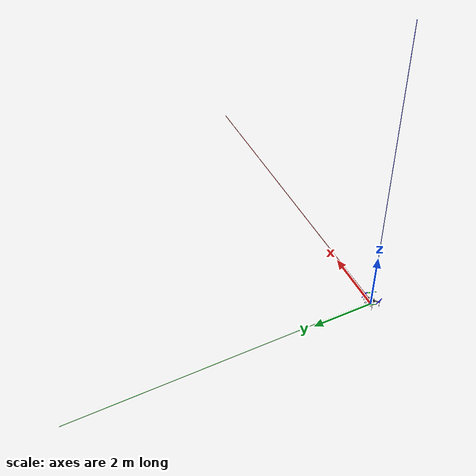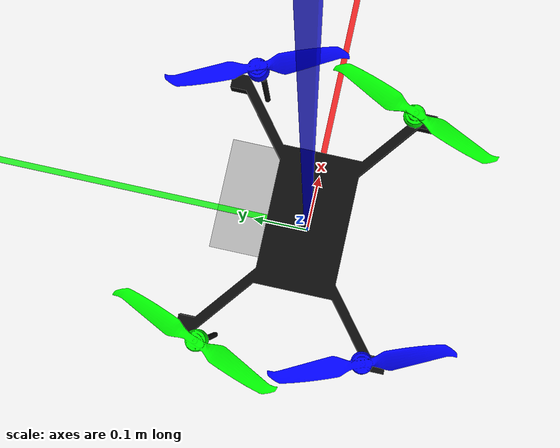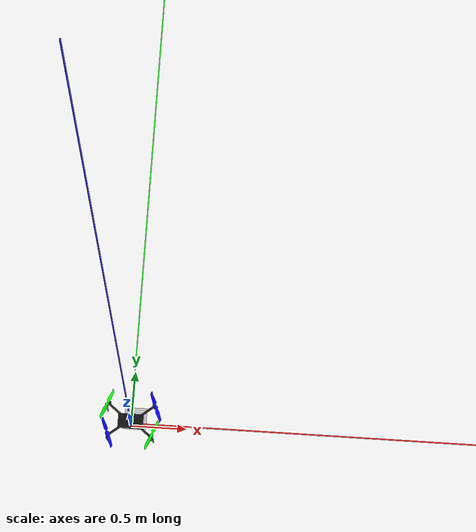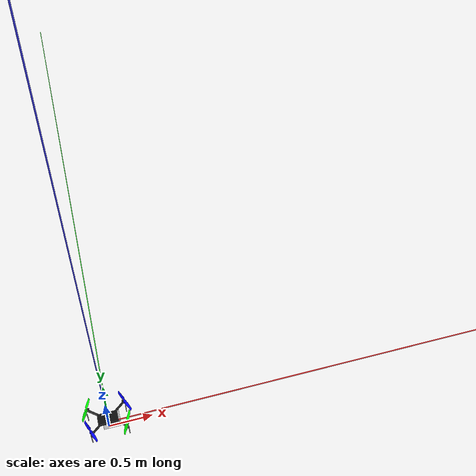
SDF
<sdf version="1.9">
 <world name="custom_runway">
  <physics name="1ms" type="ignore">
   <max_step_size>0.001</max_step_size>
   <real_time_factor>1.0</real_time_factor>
  </physics>
  <plugin filename="gz-sim-physics-system" name="gz::sim::systems::Physics"/>
  <plugin filename="gz-sim-sensors-system" name="gz::sim::systems::Sensors">
   <render_engine>ogre2</render_engine>
  </plugin>
  <plugin filename="gz-sim-user-commands-system" name="gz::sim::systems::UserCommands"/>
  <plugin filename="gz-sim-scene-broadcaster-system" name="gz::sim::systems::SceneBroadcaster"/>
  <plugin filename="gz-sim-imu-system" name="gz::sim::systems::Imu"/>
  <plugin filename="gz-sim-navsat-system" name="gz::sim::systems::NavSat"/>
  <scene><ambient>1.0 1.0 1.0</ambient><background>0.8 0.8 0.8</background></scene>
  <spherical_coordinates>
   <latitude_deg>-35.363262</latitude_deg>
   <longitude_deg>149.165237</longitude_deg>
   <elevation>584</elevation>
   <heading_deg>0</heading_deg>
   <surface_model>EARTH_WGS84</surface_model>
  </spherical_coordinates>
  <light type="directional" name="sun">
   <pose>0 0 10 0 0 0</pose>
   <diffuse>0.8 0.8 0.8 1</diffuse>
   <specular>0.8 0.8 0.8 1</specular>
   <attenuation>
    <range>1000</range>
    <constant>0.9</constant>
    <linear>0.01</linear>
    <quadratic>0.001</quadratic>
   </attenuation>
   <direction>-0.5 0.1 -0.9</direction>
  </light>
  <model name="axes">
   <static>1</static>
   <link name="link">
    <visual name="r">
     <cast_shadows>0</cast_shadows>
     <pose>5 0 0.1 0 0 0</pose>
     <geometry><box><size>10 0.01 0.01</size></box></geometry>
     <material>
      <ambient>1 0 0 0.8</ambient>
      <diffuse>1 0 0 0.8</diffuse>
      <emissive>1 0 0 0.8</emissive>
      <specular>0.5 0.5 0.5 0.8</specular>
     </material>
    </visual>
    <visual name="g">
     <cast_shadows>0</cast_shadows>
     <pose>0 5 0.1 0 0 0</pose>
     <geometry><box><size>0.01 10 0.01</size></box></geometry>
     <material>
      <ambient>0 1 0 0.8</ambient>
      <diffuse>0 1 0 0.8</diffuse>
      <emissive>0 1 0 0.8</emissive>
      <specular>0.5 0.5 0.5 0.8</specular>
     </material>
    </visual>
    <visual name="b">
     <cast_shadows>0</cast_shadows>
     <pose>0 0 5.1 0 0 0</pose>
     <geometry><box><size>0.01 0.01 10</size></box></geometry>
     <material>
      <ambient>0 0 1 0.8</ambient>
      <diffuse>0 0 1 0.8</diffuse>
      <emissive>0 0 1 0.8</emissive>
      <specular>0.5 0.5 0.5 0.8</specular>
     </material>
    </visual>
    <sensor name="navsat_sensor" type="navsat"><always_on>1</always_on><update_rate>1</update_rate></sensor>
   </link>
  </model>
  <include><uri>model://grasshopper</uri><pose degrees="true">0 0 0.195 0 0 90</pose></include>
  <include><uri>model://aruco</uri><pose degrees="true">0 0 0.01 0 0 0</pose></include>
 </world>
</sdf>

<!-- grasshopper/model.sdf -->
<sdf version='1.9'>
  <model name='grasshopper'>
    <pose>0 0 0 0 0 0</pose>
    <link name='base_link'>
      <velocity_decay>
        <linear>0.0</linear>
        <angular>0.0</angular>
      </velocity_decay>
      <inertial>
        <pose>0 0 0 0 0 0</pose>
        <mass>1.5</mass> <!-- PES GENERAL -->
        <inertia>
          <ixx>0.008</ixx>
          <ixy>0</ixy>
          <ixz>0</ixz>
          <iyy>0.015</iyy>
          <iyz>0</iyz>
          <izz>0.017</izz>
        </inertia>
      </inertial>
      <collision name='base_collision'>
        <pose>0 0 -0.08 0 0 0</pose>
        <geometry>
          <box>
            <size>0.47 0.47 0.23</size>
          </box>
        </geometry>
        <surface>
          <contact>
            <ode>
              <max_vel>100.0</max_vel>
              <min_depth>0.001</min_depth>
            </ode>
          </contact>
          <friction>
            <ode>
              <mu>100000.0</mu>
              <mu2>100000.0</mu2>
            </ode>
          </friction>
        </surface>
      </collision>
      <visual name='base_visual'>
        <pose>0 0 0 0 0 0 </pose>
        <geometry>
          <mesh>
            <uri>model://grasshopper/meshes/model_dron_resized.stl</uri>
          </mesh>
        </geometry>
        <material>
          <ambient>0.05 0.05 0.05</ambient>
          <diffuse>0.05 0.05 0.05</diffuse>
          <specular>1 1 1 1</specular>
          <pbr>
            <metal>
              <metalness>0.5</metalness>
              <roughness>0.5</roughness>
            </metal>
          </pbr>
        </material>
      </visual>
      <visual name='front_left_leg_visual'>
        <pose>0.123 0.22 -0.11 0 0 0</pose>
        <geometry>
          <cylinder>
            <radius>0.005</radius>
            <length>0.17</length>
          </cylinder>
        </geometry>
        <material>
          <ambient>0.05 0.05 0.05</ambient>
          <diffuse>0.05 0.05 0.05</diffuse>
          <specular>0.01 0.01 0.01 1.0</specular>
          <pbr>
            <metal>
              <metalness>0.5</metalness>
              <roughness>0.5</roughness>
            </metal>
          </pbr>
        </material>
      </visual>
      <visual name='front_right_leg_visual'>
        <pose>0.123 -0.22 -0.11 0 0 0</pose>
        <geometry>
          <cylinder>
            <radius>0.005</radius>
            <length>0.17</length>
          </cylinder>
        </geometry>
        <material>
          <ambient>0.05 0.05 0.05</ambient>
          <diffuse>0.05 0.05 0.05</diffuse>
          <specular>0.01 0.01 0.01 1.0</specular>
          <pbr>
            <metal>
              <metalness>0.5</metalness>
              <roughness>0.5</roughness>
            </metal>
          </pbr>
        </material>
      </visual>
      <visual name='rear_left_leg_visual'>
        <pose>-0.140 0.21 -0.11 0 0 0</pose>
        <geometry>
          <cylinder>
            <radius>0.005</radius>
            <length>0.17</length>
          </cylinder>
        </geometry>
        <material>
          <ambient>0.05 0.05 0.05</ambient>
          <diffuse>0.05 0.05 0.05</diffuse>
          <specular>0.01 0.01 0.01 1.0</specular>
          <pbr>
            <metal>
              <metalness>0.5</metalness>
              <roughness>0.5</roughness>
            </metal>
          </pbr>
        </material>
      </visual>
      <visual name='rear_right_leg_visual'>
        <pose>-0.140 -0.21 -0.11 0 0 0</pose>
        <geometry>
          <cylinder>
            <radius>0.005</radius>
            <length>0.17</length>
          </cylinder>
        </geometry>
        <material>
          <ambient>0.05 0.05 0.05</ambient>
          <diffuse>0.05 0.05 0.05</diffuse>
          <specular>0.01 0.01 0.01 1.0</specular>
          <pbr>
            <metal>
              <metalness>0.5</metalness>
              <roughness>0.5</roughness>
            </metal>
          </pbr>
        </material>
      </visual>
    </link>
    <link name='imu_link'>
      <inertial>
        <pose>0 0 0 0 0 0</pose>
        <mass>0.15</mass> <!-- PES IMU -->
        <inertia>
          <ixx>0.00001</ixx>
          <ixy>0</ixy>
          <ixz>0</ixz>
          <iyy>0.00002</iyy>
          <iyz>0</iyz>
          <izz>0.00002</izz>
        </inertia>
      </inertial>
      <sensor name="imu_sensor" type="imu">
        <pose degrees="true">0 0 0 180 0 0</pose>
        <always_on>1</always_on>
        <update_rate>1000.0</update_rate>
      </sensor>
    </link>
    <joint name='imu_joint' type='revolute'>
      <child>imu_link</child>
      <parent>base_link</parent>
      <axis>
        <xyz>0 0 1</xyz>
        <limit>
          <lower>0</lower>
          <upper>0</upper>
          <effort>0</effort>
          <velocity>0</velocity>
        </limit>
        <dynamics>
          <damping>1.0</damping>
        </dynamics>
      </axis>
    </joint>
    <link name='rotor_0'>
      <pose>0.13 -0.22 0.023 0 0 0</pose>
      <inertial>
        <pose>0 0 0 0 0 0</pose>
        <mass>0.025</mass>
        <inertia>
          <ixx>9.75e-06</ixx>
          <ixy>0</ixy>
          <ixz>0</ixz>
          <iyy>0.000166704</iyy>
          <iyz>0</iyz>
          <izz>0.000167604</izz>
        </inertia>
      </inertial>
      <collision name='rotor_0_collision'>
        <pose>0 0 0 0 0 0</pose>
        <geometry>
          <cylinder>
            <length>0.005</length>
            <radius>0.1</radius>
          </cylinder>
        </geometry>
        <surface>
          <contact>
            <ode/>
          </contact>
          <friction>
            <ode/>
          </friction>
        </surface>
      </collision>
      <visual name='rotor_0_visual'>
        <pose>0 0 0 0 0 0</pose>
        <geometry>
          <mesh>
            <scale>1 1 1</scale>
            <uri>model://iris_with_standoffs/meshes/iris_prop_ccw.dae</uri>
          </mesh>
        </geometry>
        <material>
          <ambient>0 0 1</ambient>
          <diffuse>0 0 1</diffuse>
          <specular>1 1 1 1</specular>
          <pbr>
            <metal>
              <metalness>0.5</metalness>
              <roughness>0.5</roughness>
            </metal>
          </pbr>
        </material>
      </visual>
      <gravity>1</gravity>
      <velocity_decay/>
      <self_collide>0</self_collide>
    </link>
    <joint name='rotor_0_joint' type='revolute'>
      <child>rotor_0</child>
      <parent>base_link</parent>
      <axis>
        <xyz>0 0 1</xyz>
        <limit>
          <lower>-1e+16</lower>
          <upper>1e+16</upper>
        </limit>
        <dynamics>
          <damping>0.004</damping>
        </dynamics>
      </axis>
      <physics>
        <ode>
          <implicit_spring_damper>1</implicit_spring_damper>
        </ode>
      </physics>
    </joint>
    <link name='rotor_1'>
      <pose>-0.13 0.2 0.023 0 0 0</pose>
      <inertial>
        <pose>0 0 0 0 0 0</pose>
        <mass>0.025</mass>
        <inertia>
          <ixx>9.75e-06</ixx>
          <ixy>0</ixy>
          <ixz>0</ixz>
          <iyy>0.000166704</iyy>
          <iyz>0</iyz>
          <izz>0.000167604</izz>
        </inertia>
      </inertial>
      <collision name='rotor_1_collision'>
        <pose>0 0 0 0 0 0</pose>
        <geometry>
          <cylinder>
            <length>0.005</length>
            <radius>0.1</radius>
          </cylinder>
        </geometry>
        <surface>
          <contact>
            <ode/>
          </contact>
          <friction>
            <ode/>
          </friction>
        </surface>
      </collision>
      <visual name='rotor_1_visual'>
        <pose>0 0 0 0 0 0</pose>
        <geometry>
          <mesh>
            <scale>1 1 1</scale>
            <uri>model://iris_with_standoffs/meshes/iris_prop_ccw.dae</uri>
          </mesh>
        </geometry>
        <material>
          <ambient>0 0 1 1</ambient>
          <diffuse>0 0 1 1</diffuse>
          <specular>1 1 1 1</specular>
          <pbr>
            <metal>
              <metalness>0.5</metalness>
              <roughness>0.5</roughness>
            </metal>
          </pbr>
        </material>
      </visual>
      <gravity>1</gravity>
      <velocity_decay/>
      <self_collide>0</self_collide>
    </link>
    <joint name='rotor_1_joint' type='revolute'>
      <child>rotor_1</child>
      <parent>base_link</parent>
      <axis>
        <xyz>0 0 1</xyz>
        <limit>
          <lower>-1e+16</lower>
          <upper>1e+16</upper>
        </limit>
        <dynamics>
          <damping>0.004</damping>
        </dynamics>
      </axis>
      <physics>
        <ode>
          <implicit_spring_damper>1</implicit_spring_damper>
        </ode>
      </physics>
    </joint>
    <link name='rotor_2'>
      <pose>0.13 0.22 0.023 0 0 0</pose>
      <inertial>
        <pose>0 0 0 0 0 0</pose>
        <mass>0.025</mass>
        <inertia>
          <ixx>9.75e-06</ixx>
          <ixy>0</ixy>
          <ixz>0</ixz>
          <iyy>0.000166704</iyy>
          <iyz>0</iyz>
          <izz>0.000167604</izz>
        </inertia>
      </inertial>
      <collision name='rotor_2_collision'>
        <pose>0 0 0 0 0 0</pose>
        <geometry>
          <cylinder>
            <length>0.005</length>
            <radius>0.1</radius>
          </cylinder>
        </geometry>
        <surface>
          <contact>
            <ode/>
          </contact>
          <friction>
            <ode/>
          </friction>
        </surface>
      </collision>
      <visual name='rotor_2_visual'>
        <pose>0 0 0 0 0 0</pose>
        <geometry>
          <mesh>
            <scale>1 1 1</scale>
            <uri>model://iris_with_standoffs/meshes/iris_prop_cw.dae</uri>
          </mesh>
        </geometry>
        <material>
          <ambient>0 1 0</ambient>
          <diffuse>0 1 0</diffuse>
          <specular>1 1 1 1</specular>
          <pbr>
            <metal>
              <metalness>0.5</metalness>
              <roughness>0.5</roughness>
            </metal>
          </pbr>
        </material>
      </visual>
      <gravity>1</gravity>
      <velocity_decay/>
      <self_collide>0</self_collide>
    </link>
    <joint name='rotor_2_joint' type='revolute'>
      <child>rotor_2</child>
      <parent>base_link</parent>
      <axis>
        <xyz>0 0 1</xyz>
        <limit>
          <lower>-1e+16</lower>
          <upper>1e+16</upper>
        </limit>
        <dynamics>
          <damping>0.004</damping>
        </dynamics>
      </axis>
      <physics>
        <ode>
          <implicit_spring_damper>1</implicit_spring_damper>
        </ode>
      </physics>
    </joint>
    <link name='rotor_3'>
      <pose>-0.13 -0.2 0.023 0 0 0</pose>
      <inertial>
        <pose>0 0 0 0 0 0</pose>
        <mass>0.025</mass>
        <inertia>
          <ixx>9.75e-06</ixx>
          <ixy>0</ixy>
          <ixz>0</ixz>
          <iyy>0.000166704</iyy>
          <iyz>0</iyz>
          <izz>0.000167604</izz>
        </inertia>
      </inertial>
      <collision name='rotor_3_collision'>
        <pose>0 0 0 0 0 0</pose>
        <geometry>
          <cylinder>
            <length>0.005</length>
            <radius>0.1</radius>
          </cylinder>
        </geometry>
        <surface>
          <contact>
            <ode/>
          </contact>
          <friction>
            <ode/>
          </friction>
        </surface>
      </collision>
      <visual name='rotor_3_visual'>
        <pose>0 0 0 0 0 0</pose>
        <geometry>
          <mesh>
            <scale>1 1 1</scale>
            <uri>model://iris_with_standoffs/meshes/iris_prop_cw.dae</uri>
          </mesh>
        </geometry>
        <material>
          <ambient>0 1 0</ambient>
          <diffuse>0 1 0</diffuse>
          <specular>1 1 1 1</specular>
          <pbr>
            <metal>
              <metalness>0.5</metalness>
              <roughness>0.5</roughness>
            </metal>
          </pbr>
        </material>
      </visual>
      <gravity>1</gravity>
      <velocity_decay/>
      <self_collide>0</self_collide>
    </link>
    <joint name='rotor_3_joint' type='revolute'>
      <child>rotor_3</child>
      <parent>base_link</parent>
      <axis>
        <xyz>0 0 1</xyz>
        <limit>
          <lower>-1e+16</lower>
          <upper>1e+16</upper>
        </limit>
        <dynamics>
          <damping>0.004</damping>
        </dynamics>
      </axis>
      <physics>
        <ode>
          <implicit_spring_damper>1</implicit_spring_damper>
        </ode>
      </physics>
    </joint>

    <plugin filename="gz-sim-joint-state-publisher-system"
      name="gz::sim::systems::JointStatePublisher">
    </plugin>
    <plugin filename="gz-sim-lift-drag-system"
        name="gz::sim::systems::LiftDrag">
      <a0>0.3</a0>
      <alpha_stall>1.4</alpha_stall>
      <cla>4.2500</cla>
      <cda>0.10</cda>
      <cma>0.0</cma>
      <cla_stall>-0.025</cla_stall>
      <cda_stall>0.0</cda_stall>
      <cma_stall>0.0</cma_stall>
      <area>0.002</area>
      <air_density>1.2041</air_density>
      <cp>0.084 0 0</cp>
      <forward>0 1 0</forward>
      <upward>0 0 1</upward>
      <link_name>rotor_0</link_name>
    </plugin>
    <plugin filename="gz-sim-lift-drag-system"
        name="gz::sim::systems::LiftDrag">
      <a0>0.3</a0>
      <alpha_stall>1.4</alpha_stall>
      <cla>4.2500</cla>
      <cda>0.10</cda>
      <cma>0.0</cma>
      <cla_stall>-0.025</cla_stall>
      <cda_stall>0.0</cda_stall>
      <cma_stall>0.0</cma_stall>
      <area>0.002</area>
      <air_density>1.2041</air_density>
      <cp>-0.084 0 0</cp>
      <forward>0 -1 0</forward>
      <upward>0 0 1</upward>
      <link_name>rotor_0</link_name>
    </plugin>

    <plugin filename="gz-sim-lift-drag-system"
        name="gz::sim::systems::LiftDrag">
      <a0>0.3</a0>
      <alpha_stall>1.4</alpha_stall>
      <cla>4.2500</cla>
      <cda>0.10</cda>
      <cma>0.0</cma>
      <cla_stall>-0.025</cla_stall>
      <cda_stall>0.0</cda_stall>
      <cma_stall>0.0</cma_stall>
      <area>0.002</area>
      <air_density>1.2041</air_density>
      <cp>0.084 0 0</cp>
      <forward>0 1 0</forward>
      <upward>0 0 1</upward>
      <link_name>rotor_1</link_name>
    </plugin>
    <plugin filename="gz-sim-lift-drag-system"
        name="gz::sim::systems::LiftDrag">
      <a0>0.3</a0>
      <alpha_stall>1.4</alpha_stall>
      <cla>4.2500</cla>
      <cda>0.10</cda>
      <cma>0.0</cma>
      <cla_stall>-0.025</cla_stall>
      <cda_stall>0.0</cda_stall>
      <cma_stall>0.0</cma_stall>
      <area>0.002</area>
      <air_density>1.2041</air_density>
      <cp>-0.084 0 0</cp>
      <forward>0 -1 0</forward>
      <upward>0 0 1</upward>
      <link_name>rotor_1</link_name>
    </plugin>

    <plugin filename="gz-sim-lift-drag-system"
        name="gz::sim::systems::LiftDrag">
      <a0>0.3</a0>
      <alpha_stall>1.4</alpha_stall>
      <cla>4.2500</cla>
      <cda>0.10</cda>
      <cma>0.0</cma>
      <cla_stall>-0.025</cla_stall>
      <cda_stall>0.0</cda_stall>
      <cma_stall>0.0</cma_stall>
      <area>0.002</area>
      <air_density>1.2041</air_density>
      <cp>0.084 0 0</cp>
      <forward>0 -1 0</forward>
      <upward>0 0 1</upward>
      <link_name>rotor_2</link_name>
    </plugin>
    <plugin filename="gz-sim-lift-drag-system"
        name="gz::sim::systems::LiftDrag">
      <a0>0.3</a0>
      <alpha_stall>1.4</alpha_stall>
      <cla>4.2500</cla>
      <cda>0.10</cda>
      <cma>0.0</cma>
      <cla_stall>-0.025</cla_stall>
      <cda_stall>0.0</cda_stall>
      <cma_stall>0.0</cma_stall>
      <area>0.002</area>
      <air_density>1.2041</air_density>
      <cp>-0.084 0 0</cp>
      <forward>0 1 0</forward>
      <upward>0 0 1</upward>
      <link_name>rotor_2</link_name>
    </plugin>

    <plugin filename="gz-sim-lift-drag-system"
        name="gz::sim::systems::LiftDrag">
      <a0>0.3</a0>
      <alpha_stall>1.4</alpha_stall>
      <cla>4.2500</cla>
      <cda>0.10</cda>
      <cma>0.0</cma>
      <cla_stall>-0.025</cla_stall>
      <cda_stall>0.0</cda_stall>
      <cma_stall>0.0</cma_stall>
      <area>0.002</area>
      <air_density>1.2041</air_density>
      <cp>0.084 0 0</cp>
      <forward>0 -1 0</forward>
      <upward>0 0 1</upward>
      <link_name>rotor_3</link_name>
    </plugin>
    <plugin filename="gz-sim-lift-drag-system"
        name="gz::sim::systems::LiftDrag">
      <a0>0.3</a0>
      <alpha_stall>1.4</alpha_stall>
      <cla>4.2500</cla>
      <cda>0.10</cda>
      <cma>0.0</cma>
      <cla_stall>-0.025</cla_stall>
      <cda_stall>0.0</cda_stall>
      <cma_stall>0.0</cma_stall>
      <area>0.002</area>
      <air_density>1.2041</air_density>
      <cp>-0.084 0 0</cp>
      <forward>0 1 0</forward>
      <upward>0 0 1</upward>
      <link_name>rotor_3</link_name>
    </plugin>

    <plugin filename="gz-sim-apply-joint-force-system"
      name="gz::sim::systems::ApplyJointForce">
      <joint_name>rotor_0_joint</joint_name>
    </plugin>
    <plugin filename="gz-sim-apply-joint-force-system"
      name="gz::sim::systems::ApplyJointForce">
      <joint_name>rotor_1_joint</joint_name>
    </plugin>
    <plugin filename="gz-sim-apply-joint-force-system"
      name="gz::sim::systems::ApplyJointForce">
      <joint_name>rotor_2_joint</joint_name>
    </plugin>
    <plugin filename="gz-sim-apply-joint-force-system"
      name="gz::sim::systems::ApplyJointForce">
      <joint_name>rotor_3_joint</joint_name>
    </plugin>

    <plugin name="ArduPilotPlugin"
      filename="ArduPilotPlugin">
      <!-- Port settings -->
      <fdm_addr>127.0.0.1</fdm_addr>
      <fdm_port_in>9002</fdm_port_in>
      <connectionTimeoutMaxCount>5</connectionTimeoutMaxCount>
      <lock_step>1</lock_step>
      <have_32_channels>0</have_32_channels>

      <!-- Frame conventions
        Require by ArduPilot: change model and gazebo from XYZ to XY-Z coordinates
      -->
      <modelXYZToAirplaneXForwardZDown degrees="true">0 0 0 180 0 0</modelXYZToAirplaneXForwardZDown>
      <gazeboXYZToNED degrees="true">0 0 0 180 0 90</gazeboXYZToNED>

      <!-- Sensors -->
      <imuName>imu_link::imu_sensor</imuName>

      <!--
          incoming control command [0, 1]
          so offset it by 0 to get [0, 1]
          and divide max target by 1.
          offset = 0
          multiplier = 838 max rpm / 1 = 838
        -->
      <control channel="0">
        <jointName>rotor_0_joint</jointName>
        <useForce>1</useForce>
        <multiplier>838</multiplier>
        <offset>0</offset>
        <servo_min>1100</servo_min>
        <servo_max>1900</servo_max>
        <type>VELOCITY</type>
        <p_gain>0.20</p_gain>
        <i_gain>0</i_gain>
        <d_gain>0</d_gain>
        <i_max>0</i_max>
        <i_min>0</i_min>
        <cmd_max>2.5</cmd_max>
        <cmd_min>-2.5</cmd_min>
        <controlVelocitySlowdownSim>1</controlVelocitySlowdownSim>
      </control>

      <control channel="1">
        <jointName>rotor_1_joint</jointName>
        <useForce>1</useForce>
        <multiplier>838</multiplier>
        <offset>0</offset>
        <servo_min>1100</servo_min>
        <servo_max>1900</servo_max>
        <type>VELOCITY</type>
        <p_gain>0.20</p_gain>
        <i_gain>0</i_gain>
        <d_gain>0</d_gain>
        <i_max>0</i_max>
        <i_min>0</i_min>
        <cmd_max>2.5</cmd_max>
        <cmd_min>-2.5</cmd_min>
        <controlVelocitySlowdownSim>1</controlVelocitySlowdownSim>
      </control>

      <control channel="2">
        <jointName>rotor_2_joint</jointName>
        <useForce>1</useForce>
        <multiplier>-838</multiplier>
        <offset>0</offset>
        <servo_min>1100</servo_min>
        <servo_max>1900</servo_max>
        <type>VELOCITY</type>
        <p_gain>0.20</p_gain>
        <i_gain>0</i_gain>
        <d_gain>0</d_gain>
        <i_max>0</i_max>
        <i_min>0</i_min>
        <cmd_max>2.5</cmd_max>
        <cmd_min>-2.5</cmd_min>
        <controlVelocitySlowdownSim>1</controlVelocitySlowdownSim>
      </control>

      <control channel="3">
        <jointName>rotor_3_joint</jointName>
        <useForce>1</useForce>
        <multiplier>-838</multiplier>
        <offset>0</offset>
        <servo_min>1100</servo_min>
        <servo_max>1900</servo_max>
        <type>VELOCITY</type>
        <p_gain>0.20</p_gain>
        <i_gain>0</i_gain>
        <d_gain>0</d_gain>
        <i_max>0</i_max>
        <i_min>0</i_min>
        <cmd_max>2.5</cmd_max>
        <cmd_min>-2.5</cmd_min>
        <controlVelocitySlowdownSim>1</controlVelocitySlowdownSim>
      </control>

    </plugin>
  </model>
</sdf>

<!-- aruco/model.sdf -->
<sdf version="1.4">
  <model name="aruco">
    <pose>1.165203 0.033734 0.077975  0.583358 0 -1.578856</pose>
     <static>true</static>
    <link name="link">
      <collision name="collision">
        <geometry>
          <mesh>
            <uri>model://aruco/aruco.DAE</uri>
          </mesh>
        </geometry>
      </collision>
      <visual name="visual">
        <geometry>
          <mesh>
            <uri>model://aruco/aruco.DAE</uri>
          </mesh>
        </geometry>
      </visual>
    </link>
  </model>
</sdf>
